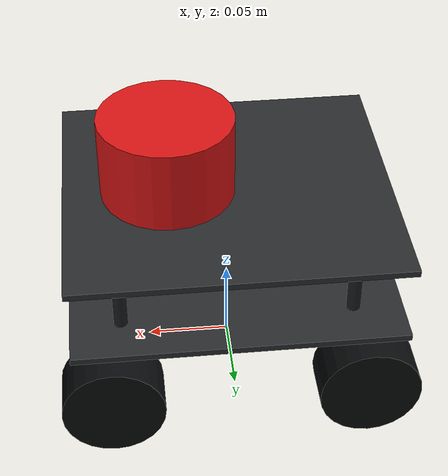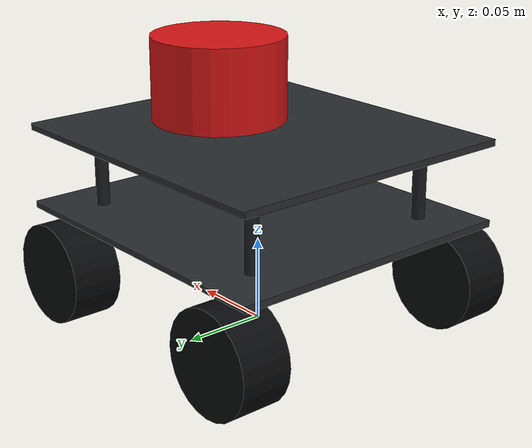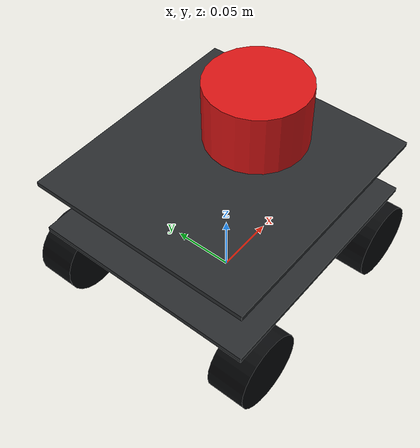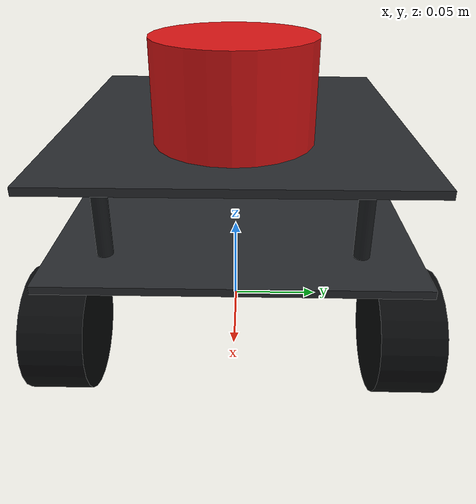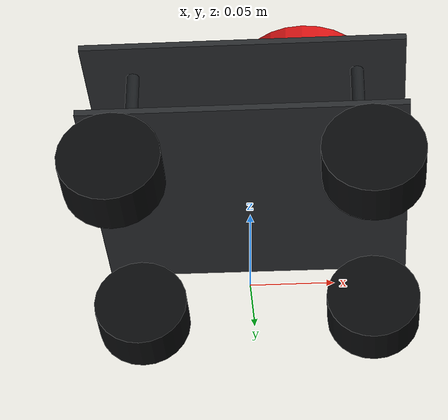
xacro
<?xml version="1.0"?>
<robot xmlns:xacro="http://www.ros.org/wiki/xacro" name="my_ros2_robot">
  <material name="deck_mat"><color rgba="0.16 0.17 0.18 1.0"/></material>
  <material name="frame_mat"><color rgba="0.10 0.11 0.12 1.0"/></material>
  <material name="wheel_mat"><color rgba="0.035 0.04 0.045 1.0"/></material>

  <xacro:include filename="../urdf/lidar.xacro"/>

  <!-- base_footprint is at ground level; the wheel axes are 30 mm above it. -->
  <link name="base_footprint"/>
  <joint name="base_joint" type="fixed">
    <parent link="base_footprint"/>
    <child link="base_link"/>
    <origin xyz="0 0 0.03" rpy="0 0 0"/>
  </joint>

  <!-- Lower 4 mm deck and four slim stand-offs. -->
  <link name="base_link">
    <visual>
      <origin xyz="0 0 0.036" rpy="0 0 0"/>
      <geometry><box size="0.195 0.18 0.004"/></geometry>
      <material name="deck_mat"/>
    </visual>
    <collision>
      <origin xyz="0 0 0.036" rpy="0 0 0"/>
      <geometry><box size="0.195 0.18 0.004"/></geometry>
    </collision>
    <visual><origin xyz="0.068 0.062 0.06"/><geometry><cylinder radius="0.004" length="0.044"/></geometry><material name="frame_mat"/></visual>
    <visual><origin xyz="0.068 -0.062 0.06"/><geometry><cylinder radius="0.004" length="0.044"/></geometry><material name="frame_mat"/></visual>
    <visual><origin xyz="-0.068 0.062 0.06"/><geometry><cylinder radius="0.004" length="0.044"/></geometry><material name="frame_mat"/></visual>
    <visual><origin xyz="-0.068 -0.062 0.06"/><geometry><cylinder radius="0.004" length="0.044"/></geometry><material name="frame_mat"/></visual>
    <inertial>
      <mass value="1.0"/>
      <origin xyz="0 0 0.036" rpy="0 0 0"/>
      <inertia ixx="0.00270" ixy="0" ixz="0" iyy="0.00317" iyz="0" izz="0.00537"/>
    </inertial>
  </link>

  <!-- Upper deck makes the two-level chassis shown in the reference photos.
       Its top is 116 mm above the floor, excluding the lidar. -->
  <link name="upper_deck">
    <visual>
      <geometry><box size="0.195 0.18 0.004"/></geometry>
      <material name="deck_mat"/>
    </visual>
    <collision><geometry><box size="0.195 0.18 0.004"/></geometry></collision>
    <inertial>
      <mass value="0.3"/>
      <origin xyz="0 0 0" rpy="0 0 0"/>
      <inertia ixx="0.00081" ixy="0" ixz="0" iyy="0.00095" iyz="0" izz="0.00175"/>
    </inertial>
  </link>
  <joint name="upper_deck_joint" type="fixed">
    <parent link="base_link"/>
    <child link="upper_deck"/>
    <origin xyz="0 0 0.084" rpy="0 0 0"/>
  </joint>

  <!-- Lidar reference frame attached to the robot chassis. -->
  <link name="chassis"/>
  <joint name="chassis_mount_joint" type="fixed">
    <parent link="base_link"/>
    <child link="chassis"/>
    <origin xyz="0 0 0" rpy="0 0 0"/>
  </joint>

  <!-- Four 60 mm mecanum wheels; outer footprint is approximately 210 x 195 mm. -->
  <xacro:macro name="wheel" params="prefix x_reflect y_reflect">
    <link name="${prefix}_wheel">
      <visual>
        <geometry><cylinder radius="0.03" length="0.03"/></geometry>
        <material name="wheel_mat"/>
      </visual>
      <collision>
        <geometry><cylinder radius="0.03" length="0.03"/></geometry>
      </collision>
      <inertial>
        <mass value="0.15"/>
        <origin xyz="0 0 0" rpy="0 0 0"/>
        <inertia ixx="0.000045" ixy="0" ixz="0" iyy="0.000045" iyz="0" izz="0.0000675"/>
      </inertial>
    </link>
    <joint name="${prefix}_wheel_joint" type="continuous">
      <parent link="base_link"/>
      <child link="${prefix}_wheel"/>
      <origin xyz="${x_reflect * 0.075} ${y_reflect * 0.0825} 0" rpy="-1.5708 0 0"/>
      <axis xyz="0 0 1"/>
    </joint>
  </xacro:macro>

  <xacro:wheel prefix="front_left" x_reflect="1" y_reflect="1"/>
  <xacro:wheel prefix="front_right" x_reflect="1" y_reflect="-1"/>
  <xacro:wheel prefix="rear_left" x_reflect="-1" y_reflect="1"/>
  <xacro:wheel prefix="rear_right" x_reflect="-1" y_reflect="-1"/>

  <gazebo reference="front_left_wheel"><mu1>1.0</mu1><mu2>0.0</mu2><fdir1>1 1 0</fdir1></gazebo>
  <gazebo reference="front_right_wheel"><mu1>1.0</mu1><mu2>0.0</mu2><fdir1>1 -1 0</fdir1></gazebo>
  <gazebo reference="rear_left_wheel"><mu1>1.0</mu1><mu2>0.0</mu2><fdir1>1 -1 0</fdir1></gazebo>
  <gazebo reference="rear_right_wheel"><mu1>1.0</mu1><mu2>0.0</mu2><fdir1>1 1 0</fdir1></gazebo>

  <gazebo>
    <plugin filename="gz-sim-mecanum-drive-system" name="gz::sim::systems::MecanumDrive">
      <front_left_joint>front_left_wheel_joint</front_left_joint>
      <front_right_joint>front_right_wheel_joint</front_right_joint>
      <back_left_joint>rear_left_wheel_joint</back_left_joint>
      <back_right_joint>rear_right_wheel_joint</back_right_joint>
      <wheel_separation>0.165</wheel_separation>
      <wheelbase>0.15</wheelbase>
      <wheel_radius>0.03</wheel_radius>
      <topic>/cmd_vel</topic>
      <odom_topic>/odom</odom_topic>
      <tf_topic>/tf</tf_topic>
      <frame_id>odom</frame_id>
      <child_frame_id>base_footprint</child_frame_id>
    </plugin>
  </gazebo>

  <!-- Publish real simulated wheel angles for robot_state_publisher/RViz. -->
  <gazebo>
    <plugin filename="gz-sim-joint-state-publisher-system" name="gz::sim::systems::JointStatePublisher">
      <joint_name>front_left_wheel_joint</joint_name>
      <joint_name>front_right_wheel_joint</joint_name>
      <joint_name>rear_left_wheel_joint</joint_name>
      <joint_name>rear_right_wheel_joint</joint_name>
      <topic>/joint_states</topic>
      <update_rate>50</update_rate>
    </plugin>
  </gazebo>
</robot>

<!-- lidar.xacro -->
<robot xmlns:xacro="http://www.ros.org/wiki/xacro">
  <joint name="laser_joint" type="fixed">
    <parent link="chassis"/>
    <child link="laser_frame"/>
    <origin xyz="0.035 0 0.111" rpy="0 0 0"/>
  </joint>
  <link name="laser_frame">
    <visual>
      <geometry><cylinder radius="0.04" length="0.05"/></geometry>
      <material name="lidar_red"><color rgba="0.85 0.08 0.08 1.0"/></material>
    </visual>
    <collision><geometry><cylinder radius="0.04" length="0.05"/></geometry></collision>
    <inertial>
      <mass value="0.1"/>
      <origin xyz="0 0 0" rpy="0 0 0"/>
      <inertia ixx="0.0000608333" ixy="0" ixz="0" iyy="0.0000608333" iyz="0" izz="0.00008"/>
    </inertial>
  </link>
  <gazebo reference="laser_frame">
    <sensor name="rplidar" type="gpu_lidar">
      <always_on>true</always_on>
      <visualize>true</visualize>
      <update_rate>10</update_rate>
      <topic>/scan</topic>
      <gz_frame_id>laser_frame</gz_frame_id>
      <ray>
        <scan><horizontal><samples>360</samples><resolution>1</resolution><min_angle>-3.14159265</min_angle><max_angle>3.14159265</max_angle></horizontal></scan>
        <range><min>0.12</min><max>12.0</max><resolution>0.01</resolution></range>
      </ray>
    </sensor>
  </gazebo>
</robot>
